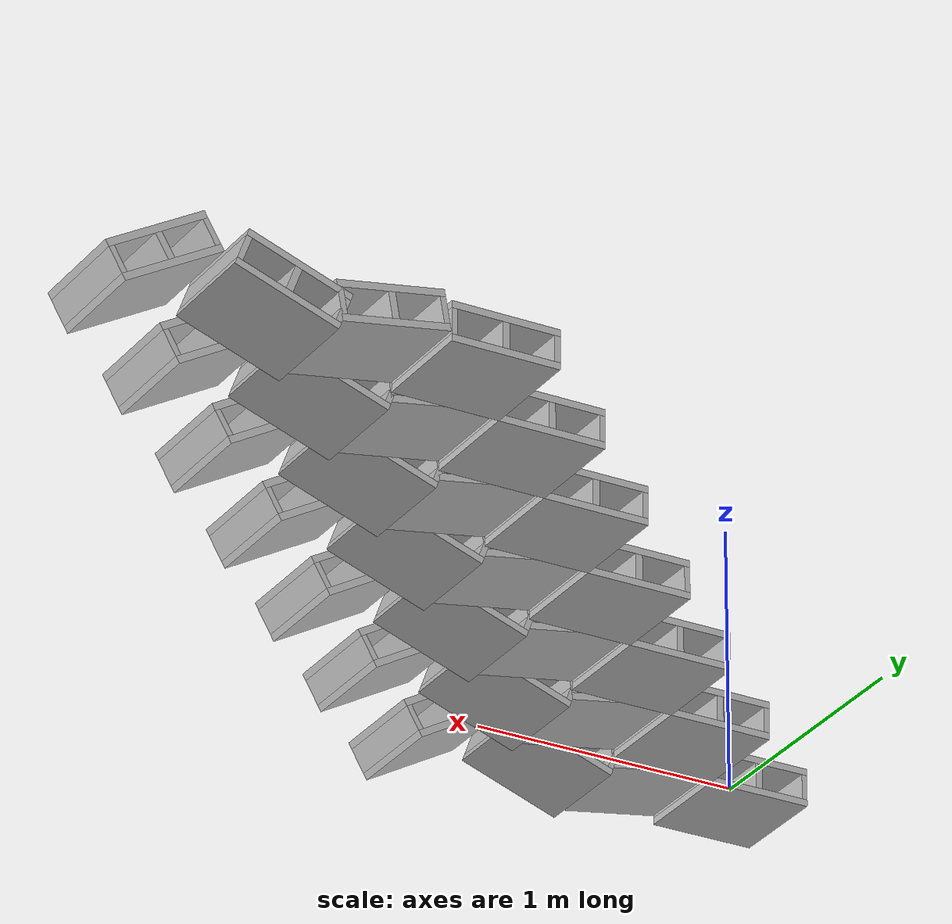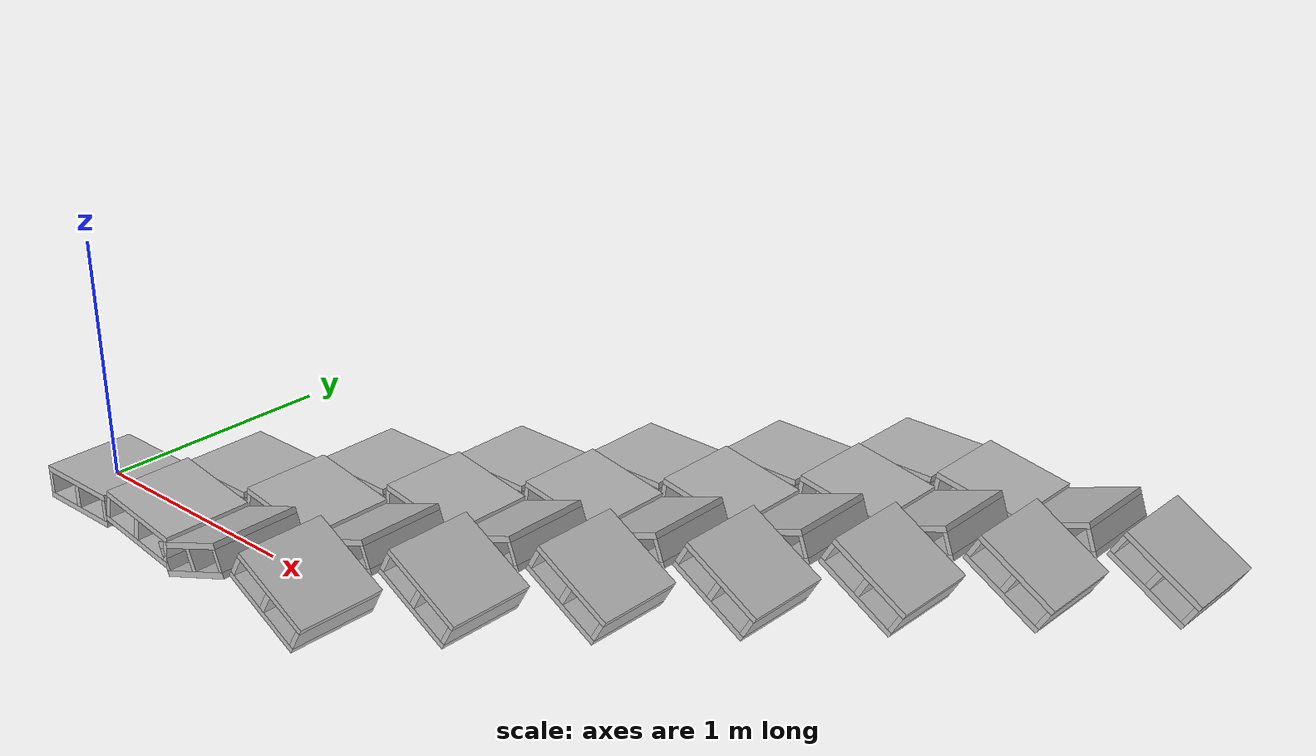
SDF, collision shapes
<?xml version="1.0" ?>
<sdf version="1.4">

  <model name="block_angle_base">
    <static>true</static>
    <pose>0 0 0 0 0 0</pose>

          <include>
            <name>block_0_0</name>
            <pose> 0.0 0.0 -0.10099999999999999 -0.0 0 1.570796 </pose>
            <uri>model://cinder_block_wide</uri>
          </include>

          <include>
            <name>block_0_1</name>
            <pose> 0.386 0.0 -0.10099999999999999 0.1745327777777778 0 1.570796 </pose>
            <uri>model://cinder_block_wide</uri>
          </include>

          <include>
            <name>block_0_2</name>
            <pose> 0.772 0.0 -0.10099999999999999 -0.3490655555555556 0 1.570796 </pose>
            <uri>model://cinder_block_wide</uri>
          </include>

          <include>
            <name>block_0_3</name>
            <pose> 1.158 0.0 -0.10099999999999999 0.5235983333333334 0 1.570796 </pose>
            <uri>model://cinder_block_wide</uri>
          </include>

          <include>
            <name>block_1_0</name>
            <pose> 0.386 0.387 -0.10099999999999999 -0.0 0 1.570796 </pose>
            <uri>model://cinder_block_wide</uri>
          </include>

          <include>
            <name>block_1_1</name>
            <pose> 0.772 0.387 -0.10099999999999999 0.1745327777777778 0 1.570796 </pose>
            <uri>model://cinder_block_wide</uri>
          </include>

          <include>
            <name>block_1_2</name>
            <pose> 1.158 0.387 -0.10099999999999999 -0.3490655555555556 0 1.570796 </pose>
            <uri>model://cinder_block_wide</uri>
          </include>

          <include>
            <name>block_1_3</name>
            <pose> 1.544 0.387 -0.10099999999999999 0.5235983333333334 0 1.570796 </pose>
            <uri>model://cinder_block_wide</uri>
          </include>

          <include>
            <name>block_2_0</name>
            <pose> 0.772 0.774 -0.10099999999999999 -0.0 0 1.570796 </pose>
            <uri>model://cinder_block_wide</uri>
          </include>

          <include>
            <name>block_2_1</name>
            <pose> 1.158 0.774 -0.10099999999999999 0.1745327777777778 0 1.570796 </pose>
            <uri>model://cinder_block_wide</uri>
          </include>

          <include>
            <name>block_2_2</name>
            <pose> 1.544 0.774 -0.10099999999999999 -0.3490655555555556 0 1.570796 </pose>
            <uri>model://cinder_block_wide</uri>
          </include>

          <include>
            <name>block_2_3</name>
            <pose> 1.93 0.774 -0.10099999999999999 0.5235983333333334 0 1.570796 </pose>
            <uri>model://cinder_block_wide</uri>
          </include>

          <include>
            <name>block_3_0</name>
            <pose> 1.158 1.161 -0.10099999999999999 -0.0 0 1.570796 </pose>
            <uri>model://cinder_block_wide</uri>
          </include>

          <include>
            <name>block_3_1</name>
            <pose> 1.544 1.161 -0.10099999999999999 0.1745327777777778 0 1.570796 </pose>
            <uri>model://cinder_block_wide</uri>
          </include>

          <include>
            <name>block_3_2</name>
            <pose> 1.93 1.161 -0.10099999999999999 -0.3490655555555556 0 1.570796 </pose>
            <uri>model://cinder_block_wide</uri>
          </include>

          <include>
            <name>block_3_3</name>
            <pose> 2.316 1.161 -0.10099999999999999 0.5235983333333334 0 1.570796 </pose>
            <uri>model://cinder_block_wide</uri>
          </include>

          <include>
            <name>block_4_0</name>
            <pose> 1.544 1.548 -0.10099999999999999 -0.0 0 1.570796 </pose>
            <uri>model://cinder_block_wide</uri>
          </include>

          <include>
            <name>block_4_1</name>
            <pose> 1.9300000000000002 1.548 -0.10099999999999999 0.1745327777777778 0 1.570796 </pose>
            <uri>model://cinder_block_wide</uri>
          </include>

          <include>
            <name>block_4_2</name>
            <pose> 2.316 1.548 -0.10099999999999999 -0.3490655555555556 0 1.570796 </pose>
            <uri>model://cinder_block_wide</uri>
          </include>

          <include>
            <name>block_4_3</name>
            <pose> 2.702 1.548 -0.10099999999999999 0.5235983333333334 0 1.570796 </pose>
            <uri>model://cinder_block_wide</uri>
          </include>

          <include>
            <name>block_5_0</name>
            <pose> 1.9300000000000002 1.935 -0.10099999999999999 -0.0 0 1.570796 </pose>
            <uri>model://cinder_block_wide</uri>
          </include>

          <include>
            <name>block_5_1</name>
            <pose> 2.3160000000000003 1.935 -0.10099999999999999 0.1745327777777778 0 1.570796 </pose>
            <uri>model://cinder_block_wide</uri>
          </include>

          <include>
            <name>block_5_2</name>
            <pose> 2.702 1.935 -0.10099999999999999 -0.3490655555555556 0 1.570796 </pose>
            <uri>model://cinder_block_wide</uri>
          </include>

          <include>
            <name>block_5_3</name>
            <pose> 3.088 1.935 -0.10099999999999999 0.5235983333333334 0 1.570796 </pose>
            <uri>model://cinder_block_wide</uri>
          </include>

          <include>
            <name>block_6_0</name>
            <pose> 2.316 2.322 -0.10099999999999999 -0.0 0 1.570796 </pose>
            <uri>model://cinder_block_wide</uri>
          </include>

          <include>
            <name>block_6_1</name>
            <pose> 2.702 2.322 -0.10099999999999999 0.1745327777777778 0 1.570796 </pose>
            <uri>model://cinder_block_wide</uri>
          </include>

          <include>
            <name>block_6_2</name>
            <pose> 3.088 2.322 -0.10099999999999999 -0.3490655555555556 0 1.570796 </pose>
            <uri>model://cinder_block_wide</uri>
          </include>

          <include>
            <name>block_6_3</name>
            <pose> 3.4739999999999998 2.322 -0.10099999999999999 0.5235983333333334 0 1.570796 </pose>
            <uri>model://cinder_block_wide</uri>
          </include>

  </model>

</sdf>

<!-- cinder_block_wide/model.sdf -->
<sdf version="1.5">
  <model name="cinder_block_wide">
    <link name="link">
      <inertial>
        <pose>0 0 0.0714375 0 0 0</pose>
        <mass>5</mass>
        <!-- approximate as uniform box 0.387 x 0.387 x 0.092 m -->
        <inertia>
          <ixx>0.06814656666666667</ixx>
          <ixy>0.0000</ixy>
          <iyy>0.06814656666666667</iyy>
          <ixz>0.0000</ixz>
          <iyz>0.0000</iyz>
          <izz>0.1248075</izz>
        </inertia>
      </inertial>
      <visual name="visual">
        <geometry>
          <mesh>
            <uri>model://cinder_block_wide/meshes/cinder_block_wide.dae</uri>
          </mesh>
        </geometry>
      </visual>
      <collision name="top">
        <pose>0 0 0.130175 0 0 0</pose>
        <geometry>
          <box>
            <size>0.387353556 0.387353556 0.0254</size>
          </box>
        </geometry>
        <surface>
          <contact>
            <ode>
              <max_vel>0.1</max_vel>
              <min_depth>0.001</min_depth>
            </ode>
          </contact>
          <friction>
            <ode>
              <mu>1.0</mu>
              <mu2>1.0</mu2>
            </ode>
          </friction>
        </surface>
      </collision>
      <collision name="bottom">
        <pose>0 0 0.0127 0 0 0</pose>
        <geometry>
          <box>
            <size>0.387353556 0.387353556 0.0254</size>
          </box>
        </geometry>
        <surface>
          <contact>
            <ode>
              <max_vel>0.1</max_vel>
              <min_depth>0.001</min_depth>
            </ode>
          </contact>
          <friction>
            <ode>
              <mu>1.0</mu>
              <mu2>1.0</mu2>
            </ode>
          </friction>
        </surface>
      </collision>
      <collision name="left">
        <pose>0 -0.183355107 0.0714375 0 0 0</pose>
        <geometry>
          <box>
            <size>0.387353556 0.020643342 0.092075</size>
          </box>
        </geometry>
        <surface>
          <contact>
            <ode>
              <max_vel>0.1</max_vel>
              <min_depth>0.001</min_depth>
            </ode>
          </contact>
          <friction>
            <ode>
              <mu>1.0</mu>
              <mu2>1.0</mu2>
            </ode>
          </friction>
        </surface>
      </collision>
      <collision name="right">
        <pose>0 0.183355107 0.0714375 0 0 0</pose>
        <geometry>
          <box>
            <size>0.387353556 0.020643342 0.092075</size>
          </box>
        </geometry>
        <surface>
          <contact>
            <ode>
              <max_vel>0.1</max_vel>
              <min_depth>0.001</min_depth>
            </ode>
          </contact>
          <friction>
            <ode>
              <mu>1.0</mu>
              <mu2>1.0</mu2>
            </ode>
          </friction>
        </surface>
      </collision>
      <collision name="middle">
        <pose>0 0 0.0714375 0 0 0</pose>
        <geometry>
          <box>
            <size>0.387353556 0.0254 0.092075</size>
          </box>
        </geometry>
        <surface>
          <contact>
            <ode>
              <max_vel>0.1</max_vel>
              <min_depth>0.001</min_depth>
            </ode>
          </contact>
          <friction>
            <ode>
              <mu>1.0</mu>
              <mu2>1.0</mu2>
            </ode>
          </friction>
        </surface>
      </collision>
    </link>
  </model>
</sdf>
